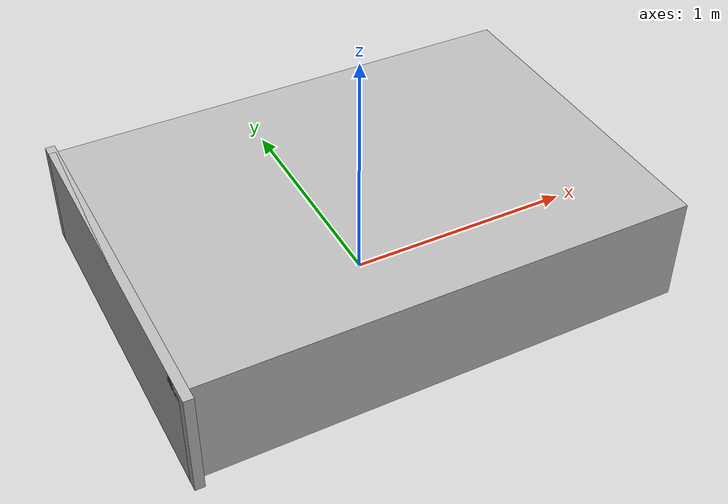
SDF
<?xml version="1.0" ?>
<sdf version="1.6">
  <model name="rpo2023/bed">
    <static>true</static>
    <link name="1_link">
      <collision name="1_col">
        <geometry>
          <box>
            <size>0.04 1.55 0.46</size>
          </box>
        </geometry>
      </collision>
      <visual name="1_vis">
        <geometry>
          <box>
            <size>0.04 1.55 0.46</size>
          </box>
        </geometry>
      </visual>
      <pose>-1.03 0.0 0.23 0 0 0</pose>
    </link>
    <link name="2_link">
      <collision name="2_col">
        <geometry>
          <box>
            <size>2.1 1.46 0.46</size>
          </box>
        </geometry>
      </collision>
      <visual name="2_vis">
        <geometry>
          <box>
            <size>2.1 1.46 0.46</size>
          </box>
        </geometry>
      </visual>
      <pose>0.0 0.0 0.23 0 0 0</pose>
    </link>
    <link name="on_top_of">
      <virtual_volume name="on_top_of_vv">
        <geometry>
          <box>
            <size>2.08 1.4 0.25</size>
          </box>
        </geometry>
        <pose>0.0 0.0 0.605 0 0 0</pose>
      </virtual_volume>
    </link>
    <link name="in_front_of">
      <virtual_volume name="in_front_of_vv">
        <geometry>
          <box>
            <size>0.2 1.26 0.01</size>
          </box>
        </geometry>
        <pose>-1.55 0.0 0.005 0 0 0</pose>
      </virtual_volume>
    </link>
  </model>
</sdf>
